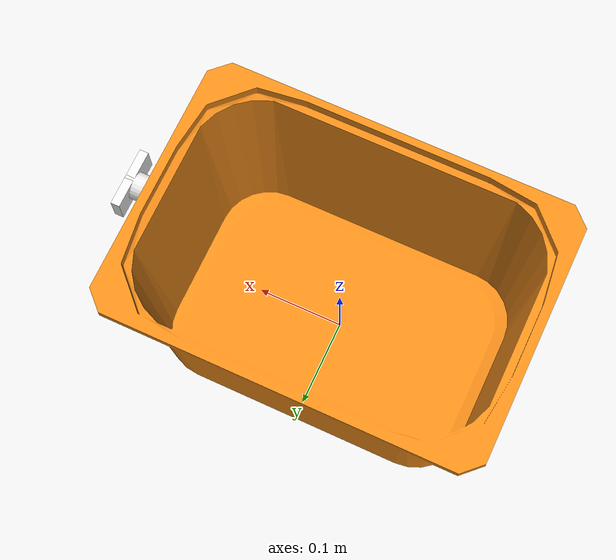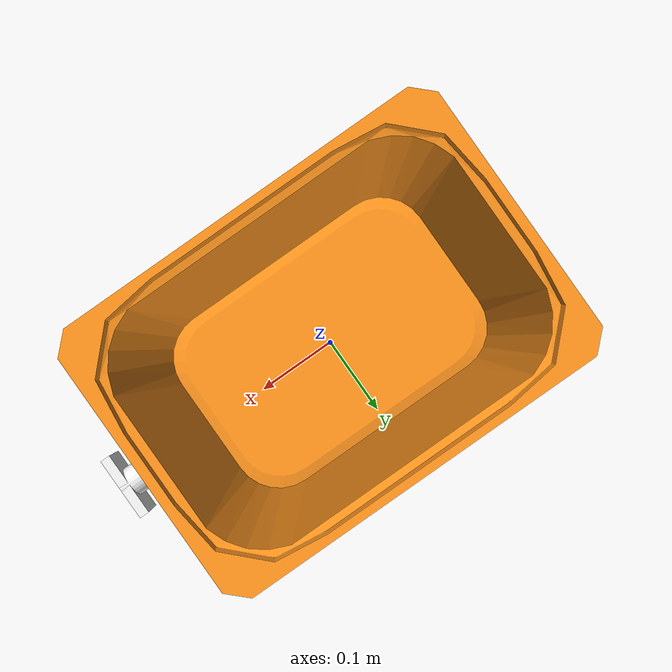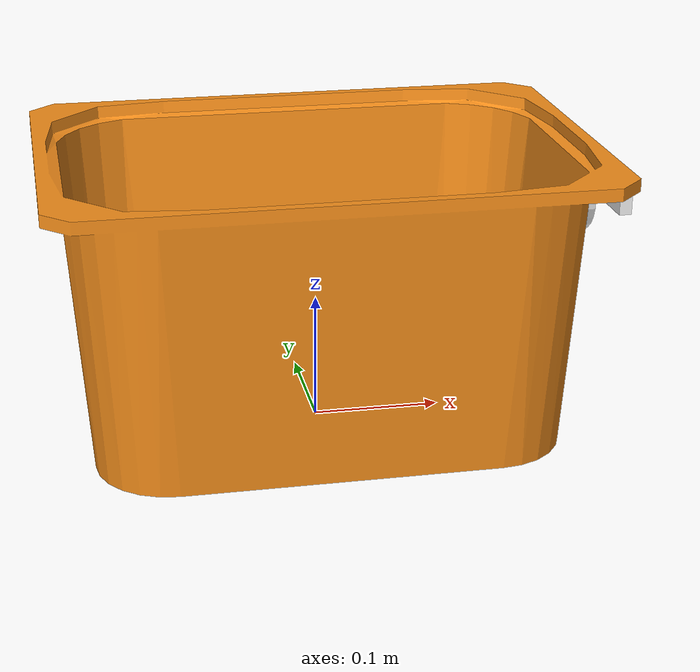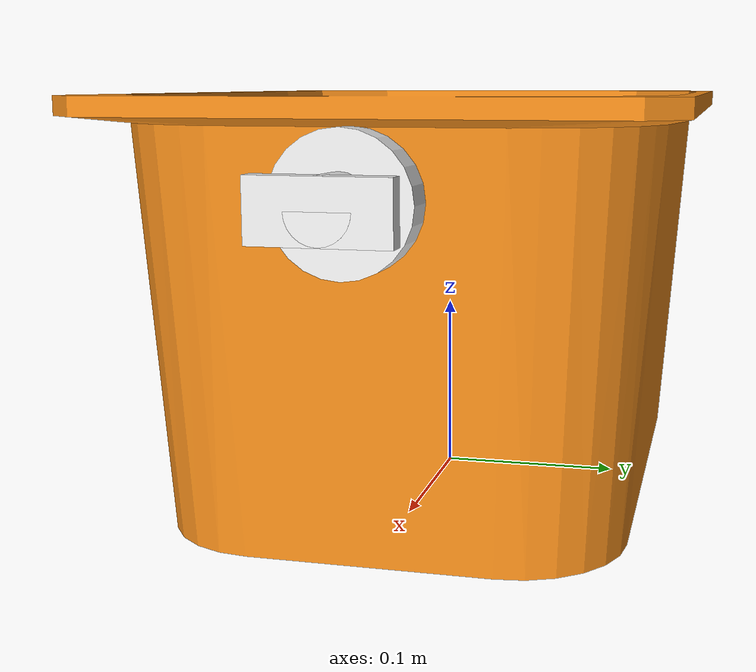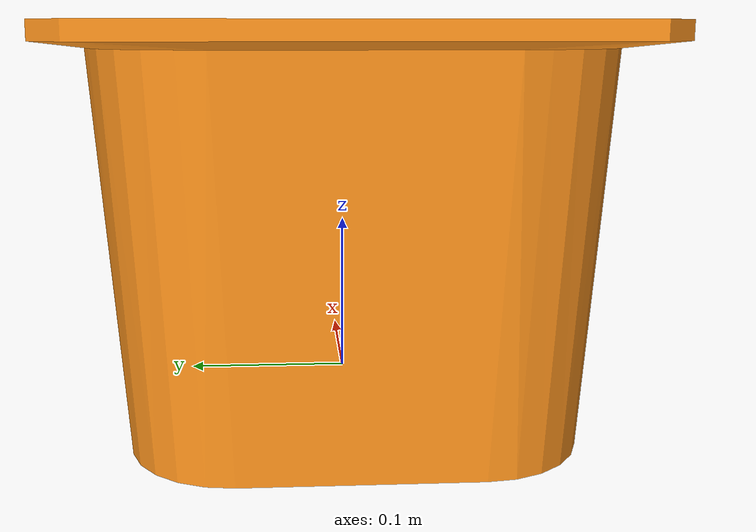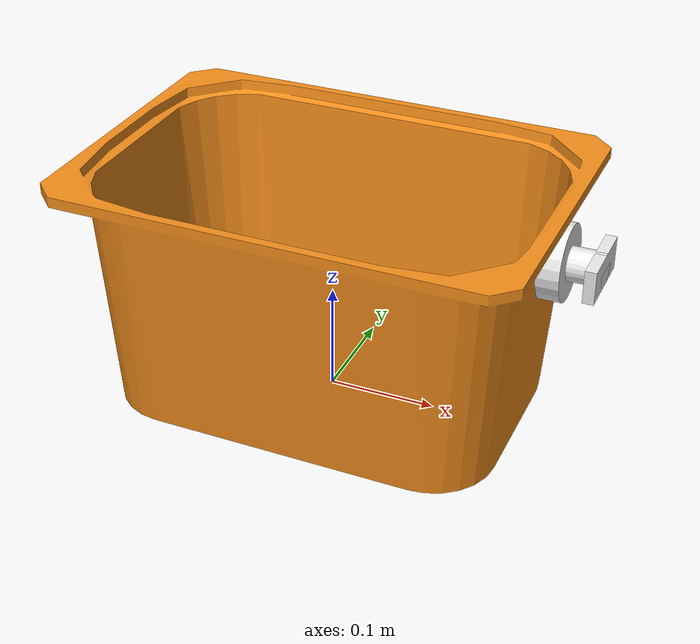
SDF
<?xml version="1.0" ?>
<sdf version="1.4">
  <model name='trofast'>
    <link name='body'>
      <inertial>
        <pose>0 0 0.115 0 0 0</pose>
        <mass>0.54</mass>
        <inertia>
          <ixx>0.0064</ixx>
          <ixy>0</ixy>
          <ixz>0</ixz>
          <iyy>0.0103</iyy>
          <iyz>0</iyz>
          <izz>0.012</izz>
        </inertia>
      </inertial>
      <visual name='trofast'>
        <pose>0 0 0 0 0 0</pose>
        <geometry>
          <mesh>
            <uri>model://trofast_knob/meshes/trofast.stl</uri>
          </mesh>
        </geometry>
        <material>
          <script>
            <uri>file://media/materials/scripts/gazebo.material</uri>
            <name>Gazebo/Orange</name>
          </script>
        </material>
      </visual>
      <visual name='knob_base'>
        <pose>0.205 0 0.18 0 1.56 0</pose>
        <geometry>
            <cylinder>
                <radius>0.034</radius>
                <length>0.02</length>
            </cylinder>
        </geometry>
        <material>
          <script>
            <uri>file://media/materials/scripts/gazebo.material</uri>
            <name>Gazebo/White</name>
          </script>
        </material>
      </visual>
      <visual name='knob_pole'>
        <pose>0.22 0 0.18 0 1.56 0</pose>
        <geometry>
            <cylinder>
                <radius>0.015</radius>
                <length>0.05</length>
            </cylinder>
        </geometry>
        <material>
          <script>
            <uri>file://media/materials/scripts/gazebo.material</uri>
            <name>Gazebo/White</name>
          </script>
        </material>
      </visual>
      <visual name='knob_handle'>
        <pose>0.24 0 0.18 0 0 0</pose>
        <geometry>
            <box>
                <size>0.01 0.066 0.03</size>
            </box>
        </geometry>
        <material>
          <script>
            <uri>file://media/materials/scripts/gazebo.material</uri>
            <name>Gazebo/White</name>
          </script>
        </material>
      </visual>
      <collision name='collision_trofast'>
        <pose>0 0 0 0 0 0</pose>
        <geometry>
          <mesh>
            <uri>model://trofast_knob/meshes/trofast.stl</uri>
          </mesh>
        </geometry>
        <max_contacts>10</max_contacts>
        <surface>
          <contact>
            <ode>
              <kp>1e15</kp>
              <kd>1e13</kd>
            </ode>
          </contact>
        </surface>
      </collision>
      <collision name='collision_knob_base'>
        <pose>0.205 0 0.18 0 1.56 0</pose>
        <geometry>
            <cylinder>
                <radius>0.034</radius>
                <length>0.02</length>
            </cylinder>
        </geometry>
      </collision>
      <collision name='collision_knob_pole'>
        <pose>0.22 0 0.18 0 1.56 0</pose>
        <geometry>
            <cylinder>
                <radius>0.015</radius>
                <length>0.05</length>
            </cylinder>
        </geometry>
      </collision>
      <collision name='collision_knob_handle'>
        <pose>0.24 0 0.18 0 0 0</pose>
        <geometry>
            <box>
                <size>0.01 0.066 0.03</size>
            </box>
        </geometry>
      </collision>
    </link>
  </model>
</sdf>
